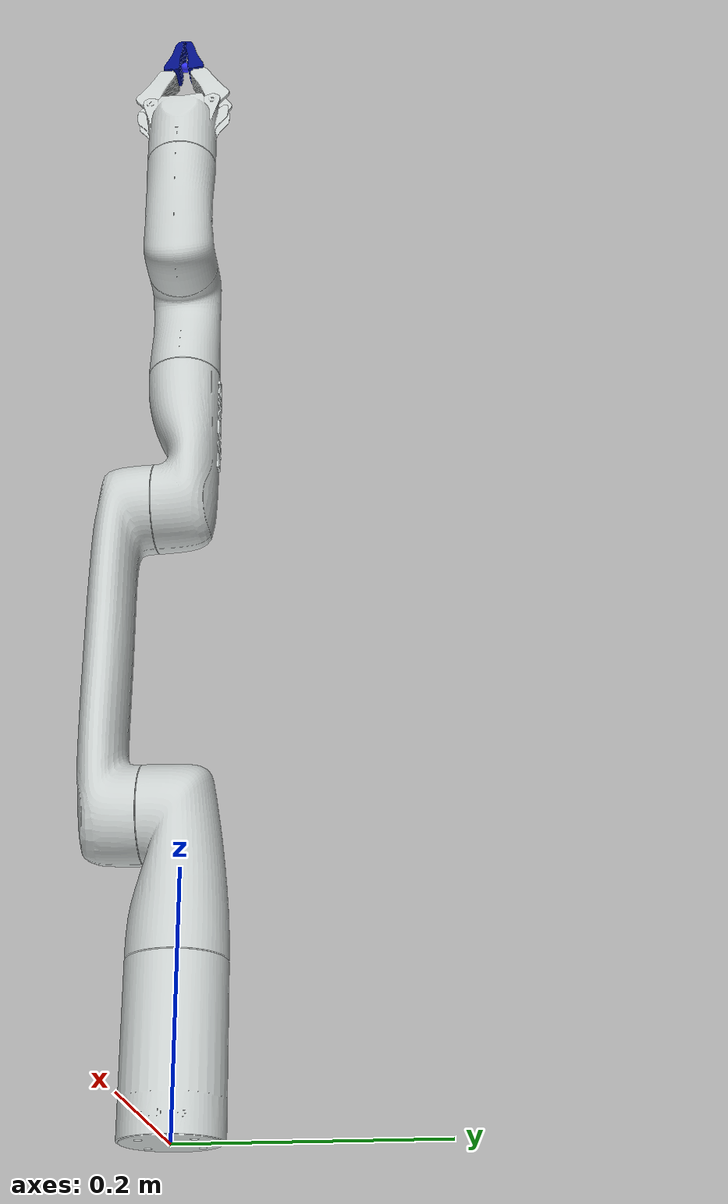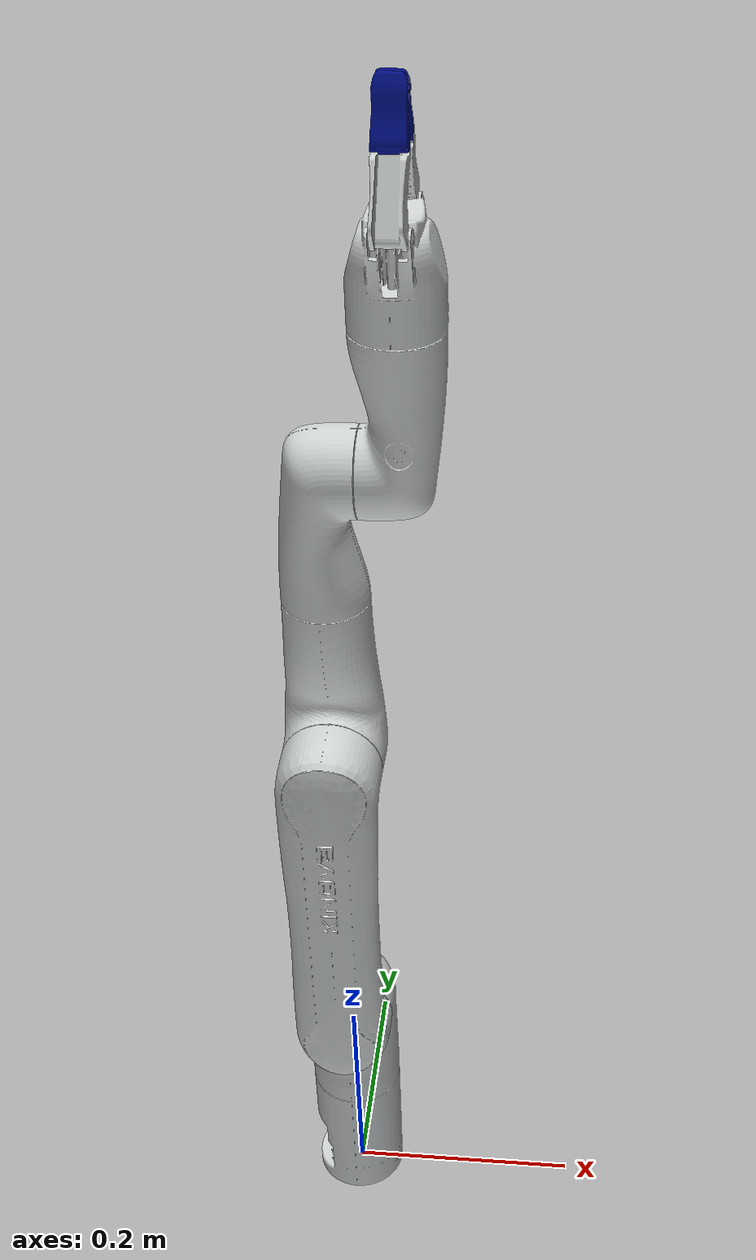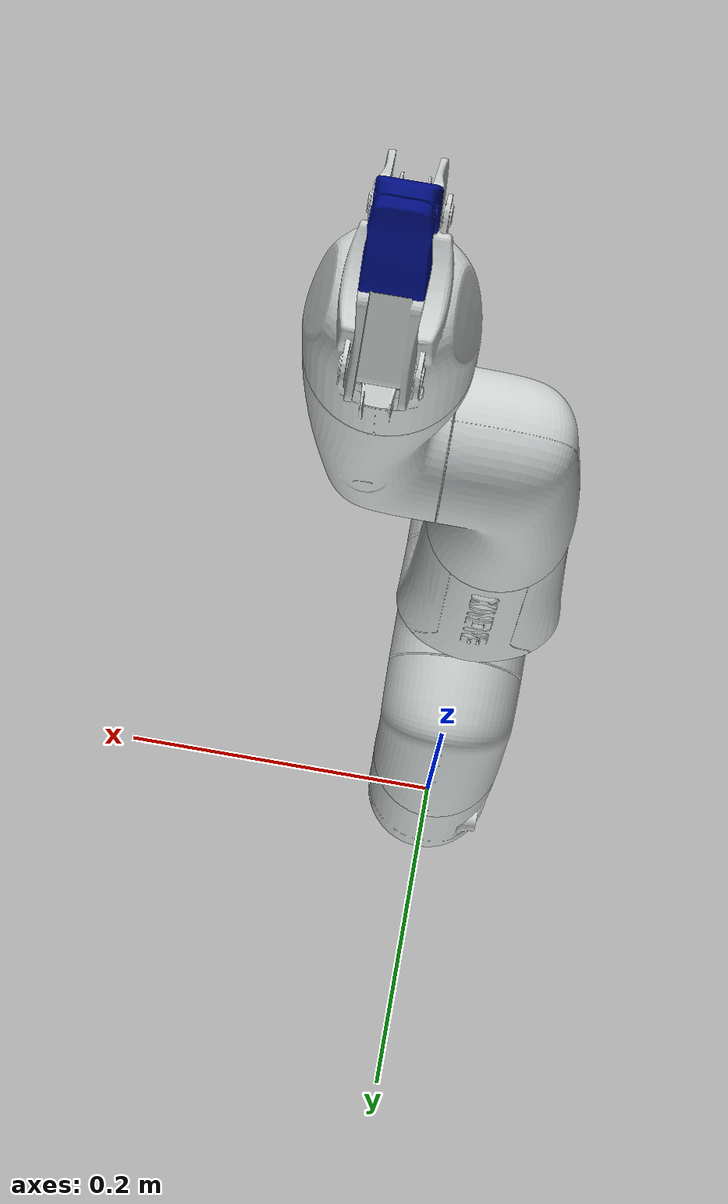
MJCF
<mujoco model="gen3_lite">

  <compiler angle="radian" meshdir="assets/"/>
  <option integrator="implicitfast" cone="pyramidal" impratio="50" tolerance="1e-10" noslip_iterations="8">
    <flag gravity="enable"/>
  </option>

  <size nconmax="400" njmax="2000"/>

  <default>

    <default class="visual">
      <geom type="mesh" contype="0" conaffinity="0" group="2" rgba="0.803 0.824 0.82 1"/>
    </default>
    <default class="collision">
      <geom type="mesh" group="3" condim="4" solref="0.005 1" solimp="0.9 0.95 0.001"/>
    </default>

    <joint damping="0.02" armature="0.001" limited="true"/>

    <default class="large_actuator">
      <position kp="1200" kv="80" forcerange="-105 105" ctrllimited="true"/>
    </default>
    <default class="medium_actuator">
      <position kp="650" kv="60" forcerange="-72 72" ctrllimited="true"/>
    </default>
    <default class="small_actuator">
      <position kp="400" kv="40" forcerange="-52 52" ctrllimited="true"/>
    </default>

    <default class="grip_joint">
      <joint damping="0.05" armature="0.002"/>
    </default>
  </default>

  <asset>
    <mesh name="base_link" file="base_link.stl"/>
    <mesh name="shoulder_link" file="shoulder_link.stl"/>
    <mesh name="arm_link" file="arm_link.stl"/>
    <mesh name="forearm_link" file="forearm_link.stl"/>
    <mesh name="lower_wrist_link" file="lower_wrist_link.stl"/>
    <mesh name="upper_wrist_link" file="upper_wrist_link.stl"/>
    <mesh name="gripper_base_link" file="gripper_base_link.stl"/>
    <mesh name="right_finger_prox_link" file="right_finger_prox_link.stl"/>
    <mesh name="right_finger_dist_link" file="right_finger_dist_link.stl"/>
    <mesh name="left_finger_prox_link" file="left_finger_prox_link.stl"/>
    <mesh name="left_finger_dist_link" file="left_finger_dist_link.stl"/>
  </asset>

  <worldbody>
    <body name="base_link">
      <inertial pos="0.00244324 0.00015573 0.0861674" quat="0.999765 0.000276221 -0.0211882 0.00451385" mass="1.14608"
        diaginertia="0.0033632 0.003311 0.000766919"/>
      <geom class="visual" mesh="base_link"/>
      <geom class="collision" mesh="base_link"/>

      <body name="shoulder_link" pos="0 0 0.12825">
        <inertial pos="2.477e-05 0.0221353 0.0993769" quat="0.972429 0.233194 -0.000430944 0.00108761" mass="0.959744"
          diaginertia="0.00165947 0.00158128 0.000717195"/>
        <joint name="joint_1" pos="0 0 0" axis="0 0 1" range="-2.68 2.68" actuatorfrcrange="-10 10"/>
        <geom class="visual" mesh="shoulder_link"/>
        <geom class="collision" mesh="shoulder_link"/>

        <body name="arm_link" pos="0 -0.03 0.115" quat="0.707105 0.707108 0 0">
          <inertial pos="0.029983 0.211548 0.0453031" quat="0.534676 0.467794 -0.46336 0.529706" mass="1.17756"
            diaginertia="0.0115237 0.0114928 0.000839712"/>
          <joint name="joint_2" pos="0 0 0" axis="0 0 1" range="-2.61 2.61" actuatorfrcrange="-14 14"/>
          <geom class="visual" mesh="arm_link"/>
          <geom class="collision" mesh="arm_link"/>

          <body name="forearm_link" pos="0 0.28 0" quat="-3.67321e-06 -1 0 0">
            <inertial pos="0.0301559 0.0950221 0.0073555" quat="0.523543 0.49139 -0.473675 0.50997" mass="0.597677"
              diaginertia="0.00169754 0.00163253 0.000291376"/>
            <joint name="joint_3" pos="0 0 0" axis="0 0 1" range="-2.61 2.61" actuatorfrcrange="-10 10"/>
            <geom class="visual" mesh="forearm_link"/>
            <geom class="collision" mesh="forearm_link"/>

            <body name="lower_wrist_link" pos="0 -0.14 0.02" quat="0.707105 0.707108 0 0">
              <inertial pos="0.00575149 0.0100044 0.0871921" quat="0.700403 -0.13124 -0.134345 0.688595" mass="0.526934"
                diaginertia="0.000785199 0.000756398 0.000275722"/>
              <joint name="joint_4" pos="0 0 0" axis="0 0 1" range="-2.6 2.6" actuatorfrcrange="-7 7"/>
              <geom class="visual" mesh="lower_wrist_link"/>
              <geom class="collision" mesh="lower_wrist_link"/>

              <body name="upper_wrist_link" pos="0.0285 0 0.105" quat="0.707105 0 0.707108 0">
                <inertial pos="0.0805652 0.00980409 0.018728" quat="0.00431726 0.708285 -4.18922e-06 0.705913"
                  mass="0.580973" diaginertia="0.00108466 0.00106374 0.000212638"/>
                <joint name="joint_5" pos="0 0 0" axis="0 0 1" range="-2.53 2.53" actuatorfrcrange="-7 7"/>
                <geom class="visual" mesh="upper_wrist_link"/>
                <geom class="collision" mesh="upper_wrist_link"/>

                <body name="end_effector_link" pos="-0.105 0 0.0285" quat="0.707105 0 -0.707108 0">
                  <inertial pos="0 0 0" mass="0.05" diaginertia="0.0001 0.0001 0.0001"/>
                  <joint name="joint_6" pos="0 0 0" axis="0 0 1" range="-2.6 2.6" actuatorfrcrange="-7 7"/>

                  <body name="dummy_link">
                    <body name="tool_frame" pos="0 0 0.13" quat="0.707107 0 0 0.707107">

                      <site name="ee_site" pos="0 0 0" size="0.005" rgba="0.2 0.2 1 1"/>
                    </body>

                    <body name="gripper_base_link">
                      <inertial pos="4.03e-06 1.08e-05 0.041397" quat="0.999999 -2.09897e-06 -0.00104876 0.000388495"
                        mass="0.1395" diaginertia="0.00011614 0.00010327 9.70699e-05"/>
                      <geom class="visual" mesh="gripper_base_link"/>
                      <geom class="collision" mesh="gripper_base_link"/>

                      <body name="right_finger_prox_link" pos="0 -0.030501 0.070003" quat="0.707105 0 0.707108 0">
                        <inertial pos="0.020257 0.0063483 6.991e-05" quat="0.598941 0.598941 0.375858 0.375858"
                          mass="0.018385" diaginertia="5.25068e-06 4.77e-06 1.59932e-06"/>
                        <joint class="grip_joint" name="right_finger_bottom_joint" pos="0 0 0" axis="0 0 1"
                          range="-0.09 0.96" actuatorfrcrange="-1000 1000"/>
                        <geom class="visual" mesh="right_finger_prox_link"/>
                        <geom class="collision" mesh="right_finger_prox_link"/>

                        <body name="right_finger_dist_link" pos="-0.045636 0.020423 0">
                          <inertial pos="0.018488 0.0011091 0" quat="0.557345 0.557345 0.435162 0.435162"
                            mass="0.010748" diaginertia="1.91e-06 1.61e-06 5.5e-07"/>
                          <joint class="grip_joint" name="right_finger_tip_joint" pos="0 0 0" axis="0 0 1"
                            range="-0.5 0.21" actuatorfrcrange="-1000 1000"/>

                          <geom type="mesh" contype="0" conaffinity="0" group="1" density="0" rgba="0 0.055 0.525 1"
                            mesh="right_finger_dist_link"/>
                          <geom type="mesh" rgba="0 0.055 0.525 1" mesh="right_finger_dist_link"/>
                        </body>
                      </body>

                      <body name="left_finger_prox_link" pos="0 0.0305 0.070003" quat="0.707105 0 0.707108 0">
                        <inertial pos="0.020257 0.0063483 6.99e-05" quat="0.598941 0.598941 0.375858 0.375858"
                          mass="0.018385" diaginertia="5.25068e-06 4.77e-06 1.59932e-06"/>
                        <joint class="grip_joint" name="left_finger_bottom_joint" pos="0 0 0" axis="0 0 1"
                          range="-0.96 0.09" actuatorfrcrange="-1000 1000"/>
                        <geom class="visual" mesh="left_finger_prox_link"/>
                        <geom class="collision" mesh="left_finger_prox_link"/>

                        <body name="left_finger_dist_link" pos="-0.045636 -0.020423 6.9901e-05">
                          <inertial pos="-0.018488 0.0011091 0" quat="0.557345 0.557345 0.435162 0.435162"
                            mass="0.010748" diaginertia="1.91e-06 1.61e-06 5.5e-07"/>
                          <joint class="grip_joint" name="left_finger_tip_joint" pos="0 0 0" axis="0 0 -1"
                            range="-0.5 0.21" actuatorfrcrange="-1000 1000"/>
                          <geom type="mesh" contype="0" conaffinity="0" group="1" density="0" rgba="0 0.055 0.525 1"
                            mesh="left_finger_dist_link"/>
                          <geom type="mesh" rgba="0 0.055 0.525 1" mesh="left_finger_dist_link"/>
                        </body>
                      </body>

                    </body>
                  </body>
                </body>
              </body>
            </body>
          </body>
        </body>
      </body>
    </body>
  </worldbody>

  <equality>

    <joint joint1="left_finger_bottom_joint" joint2="right_finger_bottom_joint" polycoef="0 -1 0 0 0" solref="0.01 1"
      solimp="0.95 0.99 0.001"/>

    <joint joint1="right_finger_tip_joint" joint2="right_finger_bottom_joint" polycoef="0.149 -0.676 0 0 0"
      solref="0.01 1" solimp="0.95 0.99 0.001"/>
    <joint joint1="left_finger_tip_joint" joint2="right_finger_bottom_joint" polycoef="0.149 -0.676 0 0 0"
      solref="0.01 1" solimp="0.95 0.99 0.001"/>
  </equality>

  <contact>
    <exclude body1="right_finger_prox_link" body2="right_finger_dist_link"/>
    <exclude body1="left_finger_prox_link" body2="left_finger_dist_link"/>
    <exclude body1="gripper_base_link" body2="right_finger_prox_link"/>
    <exclude body1="gripper_base_link" body2="left_finger_prox_link"/>
  </contact>

  <actuator>

    <position class="medium_actuator" name="a_joint_1" joint="joint_1" ctrlrange="-2.68 2.68"/>
    <position class="large_actuator" name="a_joint_2" joint="joint_2" ctrlrange="-1.1344640137963142 2.5656340004316642"/>
    <position class="medium_actuator" name="a_joint_3" joint="joint_3" ctrlrange="-2.61 2.61"/>
    <position class="small_actuator" name="a_joint_4" joint="joint_4" ctrlrange="-2.8797932657906435 2.8797932657906435"/>
    <position class="small_actuator" name="a_joint_5" joint="joint_5" ctrlrange="-2.53 2.53"/>
    <position class="small_actuator" name="a_joint_6" joint="joint_6" ctrlrange="-2.8797932657906435 2.8797932657906435"/>

    <position class="small_actuator" name="a_gripper" joint="right_finger_bottom_joint" ctrlrange="-0.09 0.96"/>
  </actuator>

  <sensor>

    <force name="ee_force" site="ee_site"/>
    <torque name="ee_torque" site="ee_site"/>

    <jointpos name="q_right_bottom" joint="right_finger_bottom_joint"/>
    <jointpos name="q_left_bottom" joint="left_finger_bottom_joint"/>
    <jointpos name="q_right_tip" joint="right_finger_tip_joint"/>
    <jointpos name="q_left_tip" joint="left_finger_tip_joint"/>
  </sensor>

  <keyframe>

    <key name="home" qpos="0 0.26179939 -2.26892803 0 0.95993109 1.57079633   0.0 0.149 0.0 0.149"
      ctrl="0 0.26179939 -2.26892803 0 0.95993109 1.57079633   0.0"/>

    <key name="retract" qpos="0 -0.34906585 -2.54818071 0 -0.87266463 1.57079633   0.0 0.149 0.0 0.149"
      ctrl="0 -0.34906585 -2.54818071 0 -0.87266463 1.57079633   0.0"/>

    <key name="open" qpos="0 0 0 0 0 0    0.90  -0.4594  -0.90  -0.4594" ctrl="0 0 0 0 0 0    0.90"/>

    <key name="close" qpos="0 0 0 0 0 0   -0.09   0.20984   0.09   0.20984" ctrl="0 0 0 0 0 0   -0.09"/>
  </keyframe>
</mujoco>
